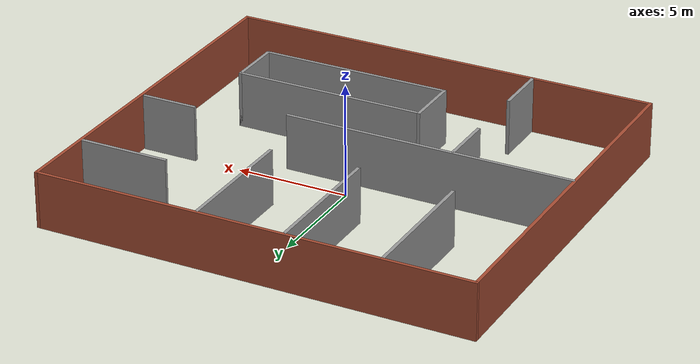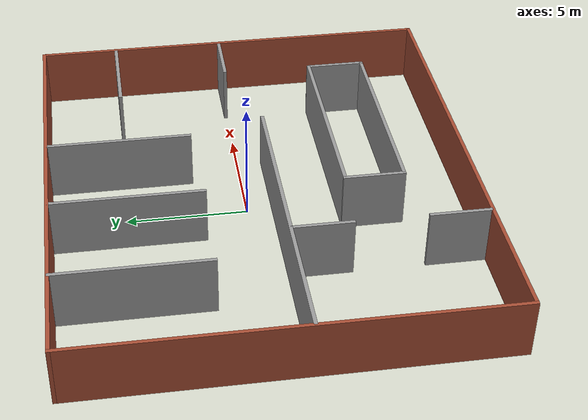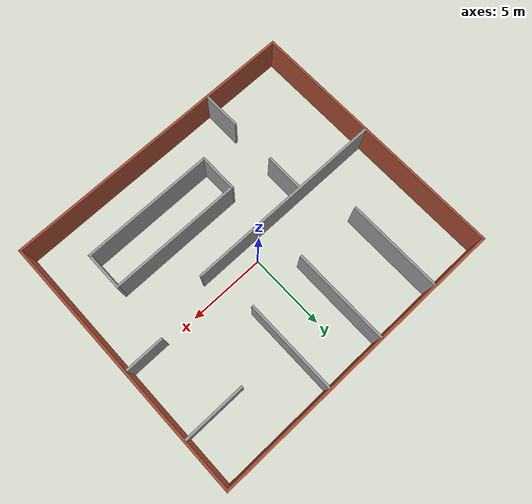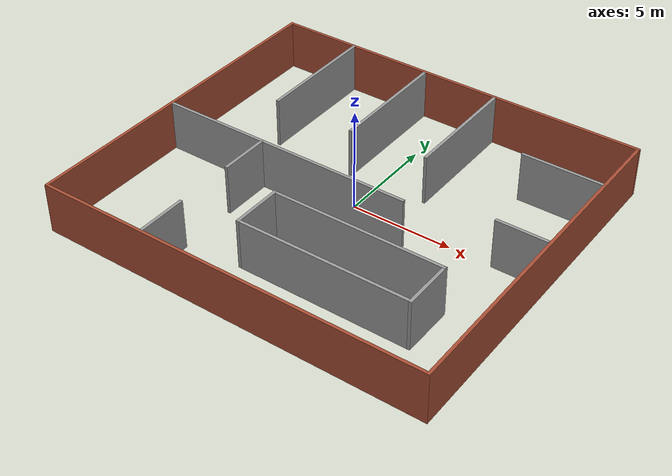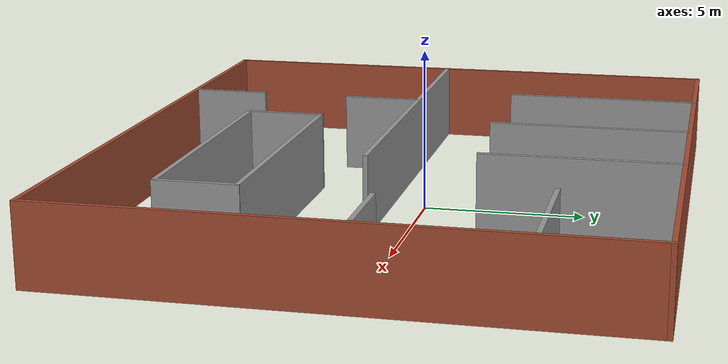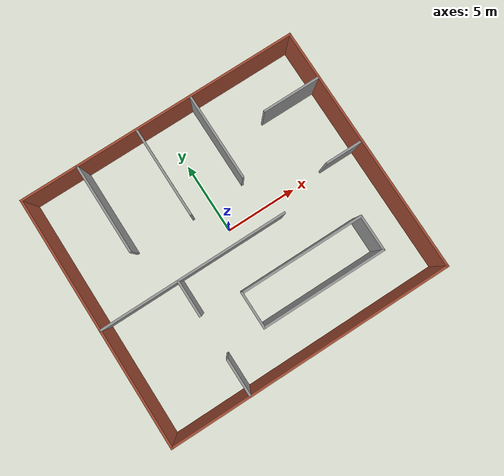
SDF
<sdf version="1.4">
 <world name="default">
  <scene>
   <ambient>0.68 0.68 0.68 1.0</ambient>
   <shadows>false</shadows>
   <sky><clouds><speed>12</speed></clouds></sky>
  </scene>
  <physics type="ode">
   <max_step_size>0.001</max_step_size>
   <real_time_factor>1</real_time_factor>
   <real_time_update_rate>1000</real_time_update_rate>
   <gravity>0 0 -9.8</gravity>
  </physics>
  <include><uri>model://sun</uri></include>
  <include><uri>model://experiment</uri></include>
 </world>
</sdf>

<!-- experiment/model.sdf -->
<sdf version='1.7'>
  <model name='experiment'>
    <pose>0.018756 -0.463141 0 0 -0 0</pose>
    <link name='Wall_10'>
      <collision name='Wall_10_Collision'>
        <geometry>
          <box>
            <size>6.25 0.15 2.5</size>
          </box>
        </geometry>
        <pose>0 0 1.25 0 -0 0</pose>
      </collision>
      <visual name='Wall_10_Visual'>
        <pose>0 0 1.25 0 -0 0</pose>
        <geometry>
          <box>
            <size>6.25 0.15 2.5</size>
          </box>
        </geometry>
        <material>
          <script>
            <uri>file://media/materials/scripts/gazebo.material</uri>
            <name>Gazebo/Grey</name>
          </script>
          <ambient>1 1 1 1</ambient>
        </material>
        <meta>
          <layer>0</layer>
        </meta>
      </visual>
      <pose>-5.78155 5.45411 0 0 -0 -1.5708</pose>
    </link>
    <link name='Wall_12'>
      <collision name='Wall_12_Collision'>
        <geometry>
          <box>
            <size>6.25 0.15 2.5</size>
          </box>
        </geometry>
        <pose>0 0 1.25 0 -0 0</pose>
      </collision>
      <visual name='Wall_12_Visual'>
        <pose>0 0 1.25 0 -0 0</pose>
        <geometry>
          <box>
            <size>6.25 0.15 2.5</size>
          </box>
        </geometry>
        <material>
          <script>
            <uri>file://media/materials/scripts/gazebo.material</uri>
            <name>Gazebo/Grey</name>
          </script>
          <ambient>1 1 1 1</ambient>
        </material>
        <meta>
          <layer>0</layer>
        </meta>
      </visual>
      <pose>-1.5601 5.4 0 0 -0 -1.5708</pose>
    </link>
    <link name='Wall_14'>
      <collision name='Wall_14_Collision'>
        <geometry>
          <box>
            <size>6 0.15 2.5</size>
          </box>
        </geometry>
        <pose>0 0 1.25 0 -0 0</pose>
      </collision>
      <visual name='Wall_14_Visual'>
        <pose>0 0 1.25 0 -0 0</pose>
        <geometry>
          <box>
            <size>6 0.15 2.5</size>
          </box>
        </geometry>
        <material>
          <script>
            <uri>file://media/materials/scripts/gazebo.material</uri>
            <name>Gazebo/Grey</name>
          </script>
          <ambient>1 1 1 1</ambient>
        </material>
        <meta>
          <layer>0</layer>
        </meta>
      </visual>
      <pose>2.32486 5.5 0 0 -0 -1.5708</pose>
    </link>
    <link name='Wall_16'>
      <collision name='Wall_16_Collision'>
        <geometry>
          <box>
            <size>4 0.15 2.5</size>
          </box>
        </geometry>
        <pose>0 0 1.25 0 -0 0</pose>
      </collision>
      <visual name='Wall_16_Visual'>
        <pose>0 0 1.25 0 -0 0</pose>
        <geometry>
          <box>
            <size>4 0.15 2.5</size>
          </box>
        </geometry>
        <material>
          <script>
            <uri>file://media/materials/scripts/gazebo.material</uri>
            <name>Gazebo/Grey</name>
          </script>
          <ambient>1 1 1 1</ambient>
        </material>
        <meta>
          <layer>0</layer>
        </meta>
      </visual>
      <pose>7.61915 5.26155 0 0 -0 3.14159</pose>
    </link>
    <link name='Wall_18'>
      <collision name='Wall_18_Collision'>
        <geometry>
          <box>
            <size>2.5 0.15 2.5</size>
          </box>
        </geometry>
        <pose>0 0 1.25 0 -0 0</pose>
      </collision>
      <visual name='Wall_18_Visual'>
        <pose>0 0 1.25 0 -0 0</pose>
        <geometry>
          <box>
            <size>2.5 0.15 2.5</size>
          </box>
        </geometry>
        <material>
          <script>
            <uri>file://media/materials/scripts/gazebo.material</uri>
            <name>Gazebo/Grey</name>
          </script>
          <ambient>1 1 1 1</ambient>
        </material>
        <meta>
          <layer>0</layer>
        </meta>
      </visual>
      <pose>8.3 0.5 0 0 -0 3.14159</pose>
    </link>
    <link name='Wall_25'>
      <collision name='Wall_25_Collision'>
        <geometry>
          <box>
            <size>8.5 0.15 2.5</size>
          </box>
        </geometry>
        <pose>0 0 1.25 0 -0 0</pose>
      </collision>
      <visual name='Wall_25_Visual'>
        <pose>0 0 1.25 0 -0 0</pose>
        <geometry>
          <box>
            <size>8.5 0.15 2.5</size>
          </box>
        </geometry>
        <material>
          <script>
            <uri>file://media/materials/scripts/gazebo.material</uri>
            <name>Gazebo/Grey</name>
          </script>
          <ambient>1 1 1 1</ambient>
        </material>
        <meta>
          <layer>0</layer>
        </meta>
      </visual>
      <pose>2.8 -3.30371 0 0 -0 0</pose>
    </link>
    <link name='Wall_27'>
      <collision name='Wall_27_Collision'>
        <geometry>
          <box>
            <size>2.56118 0.15 2.5</size>
          </box>
        </geometry>
        <pose>0 0 1.25 0 -0 0</pose>
      </collision>
      <visual name='Wall_27_Visual'>
        <pose>0 0 1.25 0 -0 0</pose>
        <geometry>
          <box>
            <size>2.56118 0.15 2.5</size>
          </box>
        </geometry>
        <material>
          <script>
            <uri>file://media/materials/scripts/gazebo.material</uri>
            <name>Gazebo/Grey</name>
          </script>
          <ambient>1 1 1 1</ambient>
        </material>
        <meta>
          <layer>0</layer>
        </meta>
      </visual>
      <pose>-1.5 -4.5093 0 0 -0 -1.5708</pose>
    </link>
    <link name='Wall_30'>
      <collision name='Wall_30_Collision'>
        <geometry>
          <box>
            <size>8.5 0.15 2.5</size>
          </box>
        </geometry>
        <pose>0 0 1.25 0 -0 0</pose>
      </collision>
      <visual name='Wall_30_Visual'>
        <pose>0 0 1.25 0 -0 0</pose>
        <geometry>
          <box>
            <size>8.5 0.15 2.5</size>
          </box>
        </geometry>
        <material>
          <script>
            <uri>file://media/materials/scripts/gazebo.material</uri>
            <name>Gazebo/Grey</name>
          </script>
          <ambient>1 1 1 1</ambient>
        </material>
        <meta>
          <layer>0</layer>
        </meta>
      </visual>
      <pose>2.8 -5.71489 0 0 -0 0</pose>
    </link>
    <link name='Wall_31'>
      <collision name='Wall_31_Collision'>
        <geometry>
          <box>
            <size>2.56118 0.15 2.5</size>
          </box>
        </geometry>
        <pose>0 0 1.25 0 -0 0</pose>
      </collision>
      <visual name='Wall_31_Visual'>
        <pose>0 0 1.25 0 -0 0</pose>
        <geometry>
          <box>
            <size>2.56118 0.15 2.5</size>
          </box>
        </geometry>
        <material>
          <script>
            <uri>file://media/materials/scripts/gazebo.material</uri>
            <name>Gazebo/Grey</name>
          </script>
          <ambient>1 1 1 1</ambient>
        </material>
        <meta>
          <layer>0</layer>
        </meta>
      </visual>
      <pose>7 -4.5093 0 0 -0 1.5708</pose>
    </link>
    <link name='Wall_33'>
      <collision name='Wall_33_Collision'>
        <geometry>
          <box>
            <size>13 0.15 2.5</size>
          </box>
        </geometry>
        <pose>0 0 1.25 0 -0 0</pose>
      </collision>
      <visual name='Wall_33_Visual'>
        <pose>0 0 1.25 0 -0 0</pose>
        <geometry>
          <box>
            <size>13 0.15 2.5</size>
          </box>
        </geometry>
        <material>
          <script>
            <uri>file://media/materials/scripts/gazebo.material</uri>
            <name>Gazebo/Grey</name>
          </script>
          <ambient>1 1 1 1</ambient>
        </material>
        <meta>
          <layer>0</layer>
        </meta>
      </visual>
      <pose>-3.2 -0.642363 0 0 -0 0</pose>
    </link>
    <link name='Wall_35'>
      <collision name='Wall_35_Collision'>
        <geometry>
          <box>
            <size>2.5 0.15 2.5</size>
          </box>
        </geometry>
        <pose>0 0 1.25 0 -0 0</pose>
      </collision>
      <visual name='Wall_35_Visual'>
        <pose>0 0 1.25 0 -0 0</pose>
        <geometry>
          <box>
            <size>2.5 0.15 2.5</size>
          </box>
        </geometry>
        <material>
          <script>
            <uri>file://media/materials/scripts/gazebo.material</uri>
            <name>Gazebo/Grey</name>
          </script>
          <ambient>1 1 1 1</ambient>
        </material>
        <meta>
          <layer>0</layer>
        </meta>
      </visual>
      <pose>-4.31322 -7.3 0 0 -0 1.5708</pose>
    </link>
    <link name='Wall_36'>
      <collision name='Wall_36_Collision'>
        <geometry>
          <box>
            <size>2.5 0.15 2.5</size>
          </box>
        </geometry>
        <pose>0 0 1.25 0 -0 0</pose>
      </collision>
      <visual name='Wall_36_Visual'>
        <pose>0 0 1.25 0 -0 0</pose>
        <geometry>
          <box>
            <size>2.5 0.15 2.5</size>
          </box>
        </geometry>
        <material>
          <script>
            <uri>file://media/materials/scripts/gazebo.material</uri>
            <name>Gazebo/Grey</name>
          </script>
          <ambient>1 1 1 1</ambient>
        </material>
        <meta>
          <layer>0</layer>
        </meta>
      </visual>
      <pose>-4.31322 -1.9 0 0 -0 1.5708</pose>
    </link>
    <link name='Wall_5'>
      <collision name='Wall_5_Collision'>
        <geometry>
          <box>
            <size>17.25 0.15 2.5</size>
          </box>
        </geometry>
        <pose>0 0 1.25 0 -0 0</pose>
      </collision>
      <visual name='Wall_5_Visual'>
        <pose>0 0 1.25 0 -0 0</pose>
        <geometry>
          <box>
            <size>17.25 0.15 2.5</size>
          </box>
        </geometry>
        <material>
          <script>
            <uri>file://media/materials/scripts/gazebo.material</uri>
            <name>Gazebo/Bricks</name>
          </script>
          <ambient>1 1 1 1</ambient>
        </material>
        <meta>
          <layer>0</layer>
        </meta>
      </visual>
      <pose>-9.6971 -0.015295 0 0 -0 -1.5708</pose>
    </link>
    <link name='Wall_6'>
      <collision name='Wall_6_Collision'>
        <geometry>
          <box>
            <size>19.5 0.15 2.5</size>
          </box>
        </geometry>
        <pose>0 0 1.25 0 -0 0</pose>
      </collision>
      <visual name='Wall_6_Visual'>
        <pose>0 0 1.25 0 -0 0</pose>
        <geometry>
          <box>
            <size>19.5 0.15 2.5</size>
          </box>
        </geometry>
        <material>
          <script>
            <uri>file://media/materials/scripts/gazebo.material</uri>
            <name>Gazebo/Bricks</name>
          </script>
          <ambient>1 1 1 1</ambient>
        </material>
        <meta>
          <layer>0</layer>
        </meta>
      </visual>
      <pose>-0.022102 -8.5653 0 0 -0 0</pose>
    </link>
    <link name='Wall_7'>
      <collision name='Wall_7_Collision'>
        <geometry>
          <box>
            <size>17.25 0.15 2.5</size>
          </box>
        </geometry>
        <pose>0 0 1.25 0 -0 0</pose>
      </collision>
      <visual name='Wall_7_Visual'>
        <pose>0 0 1.25 0 -0 0</pose>
        <geometry>
          <box>
            <size>17.25 0.15 2.5</size>
          </box>
        </geometry>
        <material>
          <script>
            <uri>file://media/materials/scripts/gazebo.material</uri>
            <name>Gazebo/Bricks</name>
          </script>
          <ambient>1 1 1 1</ambient>
        </material>
        <meta>
          <layer>0</layer>
        </meta>
      </visual>
      <pose>9.6529 -0.015295 0 0 -0 1.5708</pose>
    </link>
    <link name='Wall_8'>
      <collision name='Wall_8_Collision'>
        <geometry>
          <box>
            <size>19.5 0.15 2.5</size>
          </box>
        </geometry>
        <pose>0 0 1.25 0 -0 0</pose>
      </collision>
      <visual name='Wall_8_Visual'>
        <pose>0 0 1.25 0 -0 0</pose>
        <geometry>
          <box>
            <size>19.5 0.15 2.5</size>
          </box>
        </geometry>
        <material>
          <script>
            <uri>file://media/materials/scripts/gazebo.material</uri>
            <name>Gazebo/Bricks</name>
          </script>
          <ambient>1 1 1 1</ambient>
        </material>
        <meta>
          <layer>0</layer>
        </meta>
      </visual>
      <pose>-0.022102 8.53471 0 0 -0 3.14159</pose>
    </link>
    <static>1</static>
  </model>
</sdf>
